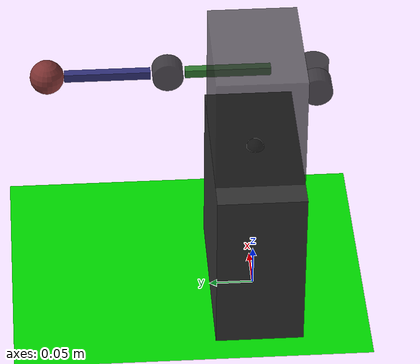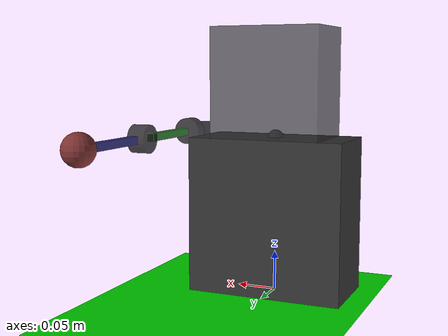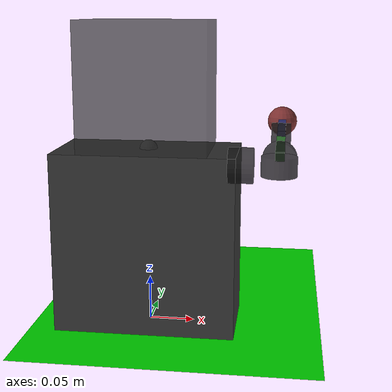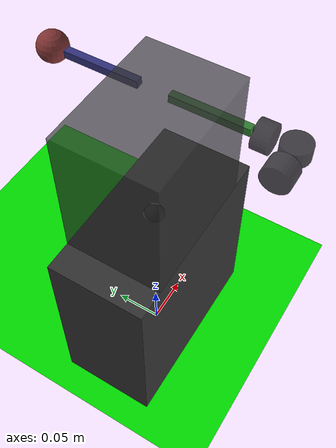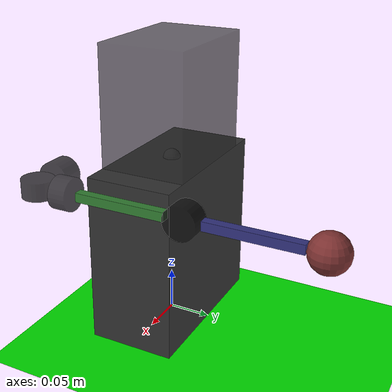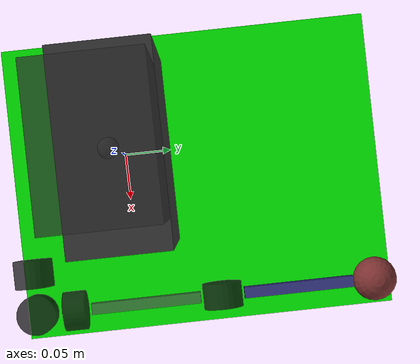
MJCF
<mujoco model="task1_modified">
    <visual>
        <headlight ambient="0.5 0.5 0.5" />
    </visual>

    <option gravity="0 0 -9.81" />

    <worldbody>
        <light name="overhead" pos="0 0 1"/>
        <geom type="plane" pos="-0.5 -0.5 0" size="1 1 0.1" rgba="0 .9 0 1"/>
        <body name="base_section" euler="0 0 0">
            <geom name="lower_part" type="box" pos="0 0 0.1" size=".1 .05 .1" rgba="0.2 0.2 0.2 1"/>
            <geom name="ball_joint" pos="0 0 .2" size=".01" rgba="0.2 0.2 0.2 1"/>
            <geom name="upper_section" type="box" pos="0 0 .27" size=".07 .05 .07" rgba="0.2 0.2 0.2 0.7"/>
        </body>
        <body name="actuator1" euler="0 0 0">
            <geom type="cylinder" fromto="0.12 -.08 0.2 0.095 -.08 0.2" size=".018" mass="0.065" rgba=".1 .1 .1 .8"/>
            <joint name="pivot_1" pos="0.105 -.08 0.2" axis="1 0 0"/>
            <body name="actuator2" euler="0 0 0">
                <geom type="cylinder" fromto="0.145 -.08 0.19 0.145 -.08 0.21" size=".018" mass="0.065" rgba=".1 .1 .1 .8"/>
                <joint name="pivot_2" pos="0.145 -.08 0.2" axis="0 0 1"/>
                <body name="actuator3" euler="0 0 0">
                    <geom type="cylinder" fromto="0.145 -.055 0.2 0.145 -.035 0.2" size=".018" mass="0.065" rgba=".1 .1 .1 .8"/>
                    <joint name="pivot_3" pos="0.145 -.045 0.2" axis="0 1 0"/>
                    <body name="link_1" euler="0 0 0">
                        <geom name="connector1" type="box" pos="0.145 .02 0.2" size=".005 .05 .005" mass="0.02" rgba="0.2 0.5 0.2 1"/>
                        <body name="joint1" euler="0 0 0">
                            <geom type="cylinder" fromto="0.1335 0.09 0.2 0.1565 0.09 0.2" size=".018" mass="0.065" rgba=".1 .1 .1 .8"/>
                            <joint name="pivot_4" pos="0.145 0.09 0.2" axis="1 0 0"/>
                            <body name="link_2" euler="0 0 0">
                                <geom name="connector2" type="box" pos="0.145 0.16 0.2" size=".005 .05 .005" mass="0.02" rgba="0.2 0.2 0.5 1"/>
                                <body name="end_mass" euler="0 0 0">
                                    <geom name="mass_block" pos="0.145 0.23 0.2" size=".02" mass="0.02" rgba="0.5 0.2 0.2 1"/>
                                </body>
                            </body>
                        </body>
                    </body>
                </body>
            </body>
        </body>
    </worldbody>
</mujoco>
